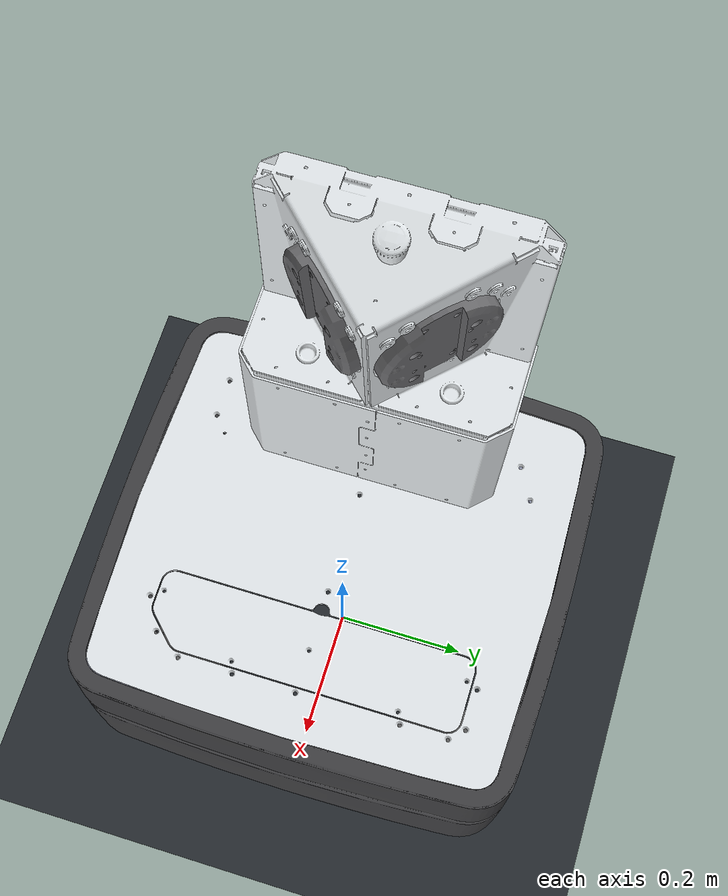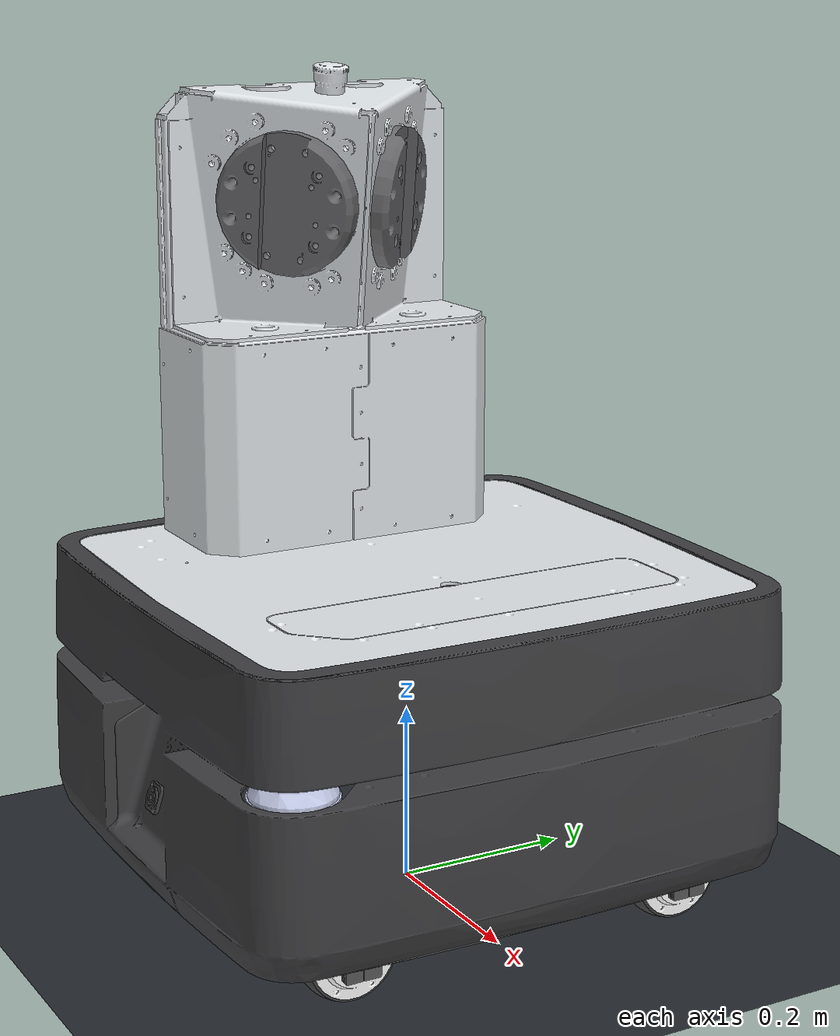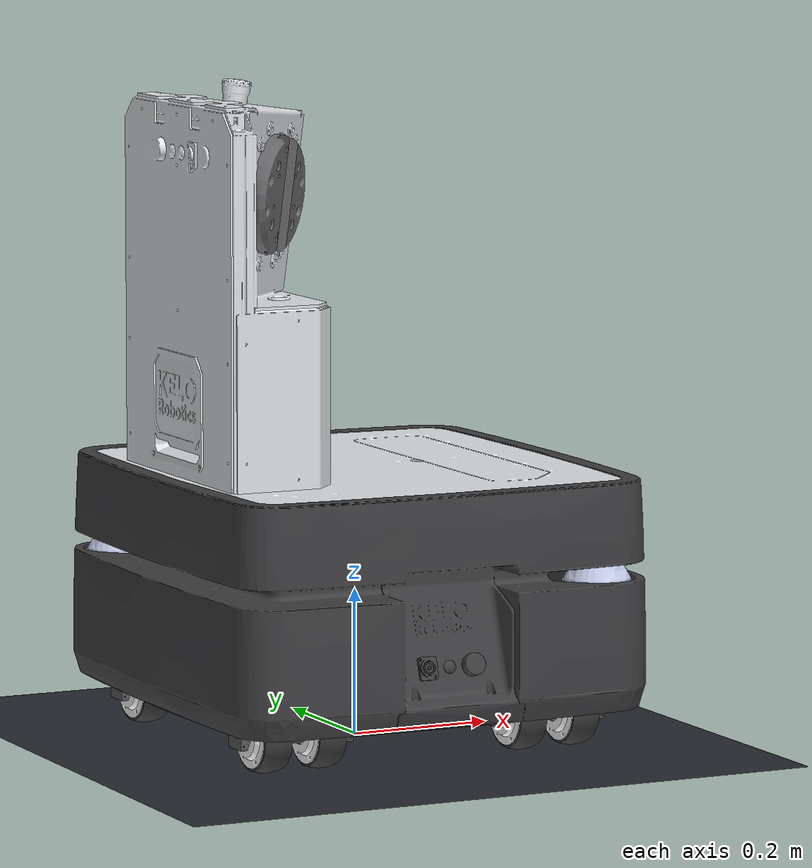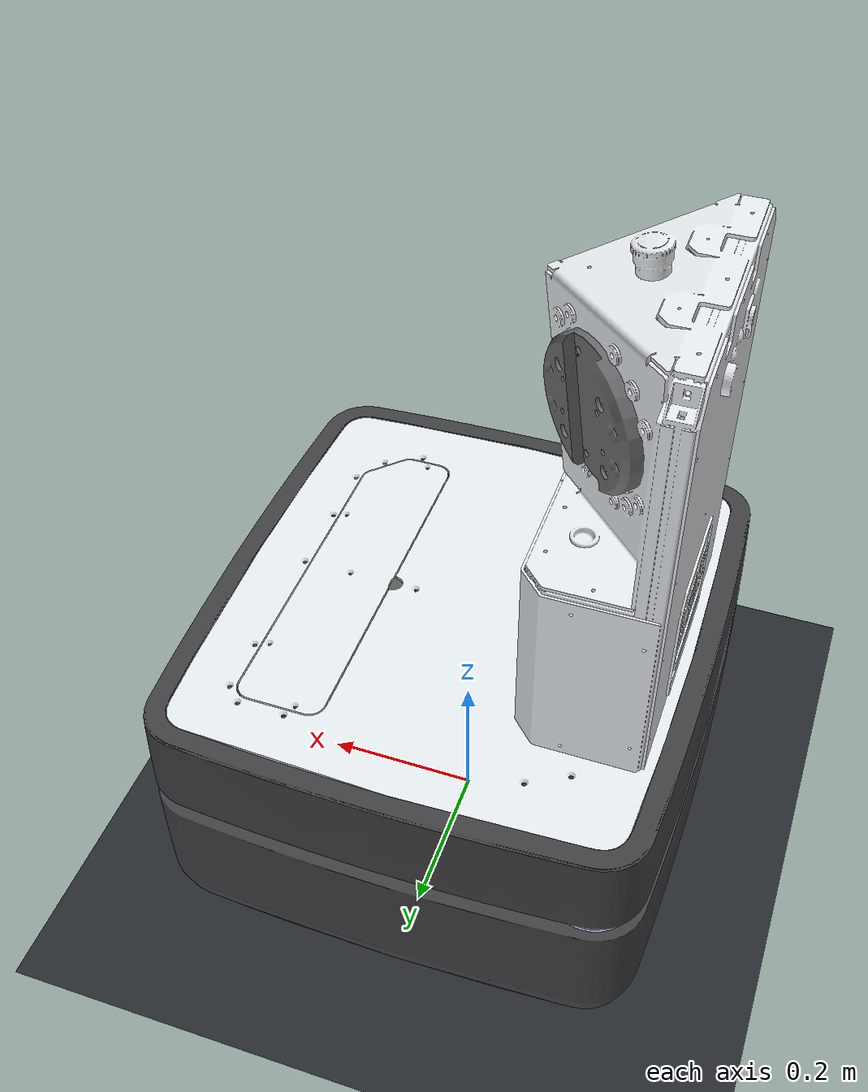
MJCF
<mujoco model="eddie_mobile_platform">
  <compiler angle="radian" inertiafromgeom="false" meshdir="../meshes"/>
  <option timestep="0.001" gravity="0 0 -9.81" integrator="implicitfast"/>
  <visual>
    <global offwidth="1280" offheight="720"/>
    <headlight diffuse="0.4 0.4 0.4" ambient="0.3 0.3 0.3" specular="0.2 0.2 0.2"/>
    <map znear="0.01" zfar="20"/>
    <rgba haze="0.15 0.2 0.25 1"/>
  </visual>
  <default>
    <joint damping="0.1" armature="0.002"/>
    <geom contype="0" conaffinity="0"/>
  </default>
  <asset>
    <texture name="sky" type="skybox" builtin="gradient" rgb1="0.15 0.25 0.4" rgb2="0.75 0.85 0.95" width="512" height="512"/>
    <texture name="floor_grid" type="2d" builtin="checker" rgb1="0.12 0.14 0.16" rgb2="0.18 0.2 0.22" width="512" height="512" mark="cross" markrgb="0.35 0.38 0.4"/>
    <material name="floor" texture="floor_grid" texrepeat="4 4" texuniform="true" reflectance="0.15"/>
    <material name="m_casing" rgba="0.25 0.25 0.26 1" specular="0.15" shininess="0.12"/>
    <material name="m_cover" rgba="0.898 0.918 0.929 1" specular="0.35" shininess="0.3"/>
    <material name="m_lidar" rgba="0.792 0.82 0.933 1" specular="0.3" shininess="0.25"/>
    <material name="m_mount" rgba="0.42 0.42 0.43 1" specular="0.3" shininess="0.3"/>
    <material name="m_drive" rgba="0.35 0.35 0.35 1" specular="0.3" shininess="0.25"/>
    <material name="m_wheel" rgba="0.996 0.996 1 1" specular="0.35" shininess="0.3"/>
    <material name="m_tyre" rgba="0.251 0.251 0.251 1" specular="0.12" shininess="0.1"/>
    <mesh name="casing" file="casing.stl" scale="0.001 0.001 0.001"/>
    <mesh name="panel" file="panel.stl" scale="0.001 0.001 0.001"/>
    <mesh name="cover" file="cover.stl" scale="0.001 0.001 0.001"/>
    <mesh name="lidar" file="lidar.stl" scale="0.001 0.001 0.001"/>
    <mesh name="torso" file="torso.stl" scale="0.001 0.001 0.001"/>
    <mesh name="torso_mounts" file="torso_mounts.stl" scale="0.001 0.001 0.001"/>
    <mesh name="drive" file="drive.stl" scale="0.001 0.001 0.001"/>
    <mesh name="wheel_a" file="wheel_a.stl" scale="0.001 0.001 0.001"/>
    <mesh name="wheel_b" file="wheel_b.stl" scale="0.001 0.001 0.001"/>
    <mesh name="tyre_a" file="tyre_a.stl" scale="0.001 0.001 0.001"/>
    <mesh name="tyre_b" file="tyre_b.stl" scale="0.001 0.001 0.001"/>
  </asset>
  <worldbody>
    <light name="key" pos="1.5 -1.5 3" dir="-0.4 0.4 -1" directional="true" diffuse="1 0.95 0.85" castshadow="true"/>
    <light name="fill" pos="-2 1 1.5" dir="0.7 -0.3 -0.5" directional="true" diffuse="0.35 0.45 0.7"/>
    <geom name="floor" type="plane" size="5 5 0.1" material="floor" friction="1 0.005 0.0001" contype="1" conaffinity="1"/>
    <body name="base" pos="0 0 0.218">
      <freejoint/>
      <!-- Base and torso, plus the two 0.16 kg laser scanners the URDF carries as
           their own links, with their parallel-axis terms. -->
      <inertial pos="0 0 0.0833" mass="76.7577" diaginertia="4.147165 4.133063 3.398081"/>
      <geom type="mesh" mesh="casing" material="m_casing" quat="0.5 0.5 0.5 0.5"/>
      <geom type="mesh" mesh="panel" material="m_casing" quat="0.5 0.5 0.5 0.5"/>
      <geom type="mesh" mesh="cover" material="m_cover" quat="0.5 0.5 0.5 0.5"/>
      <geom type="mesh" mesh="lidar" material="m_lidar" quat="0.5 0.5 0.5 0.5"/>
      <!-- Tower up to the arm mounts; placed from "Full assembly Robot 7_5D.STEP". -->
      <geom type="mesh" mesh="torso" material="m_cover" pos="-0.1738 0.0003 0.4184" quat="0.5 0.5 0.5 0.5"/>
      <geom type="mesh" mesh="torso_mounts" material="m_mount" pos="-0.1738 0.0003 0.4184" quat="0.5 0.5 0.5 0.5"/>
      <!-- the frame the drive positions and the odometry twist refer to -->
      <body name="base_link" pos="0 0 0"/>
      <body name="front_left_caster" pos="0.18813 0.20748 -0.1273">
        <joint name="pivot_front_left" type="hinge" axis="0 0 1"/>
        <inertial pos="0 -0.0101 0" mass="1.392" diaginertia="0.004574163 0.004344228 0.004640438"/>
        <geom type="mesh" mesh="drive" material="m_drive" quat="0.5 0.5 -0.5 -0.5"/>
        <body pos="0.040500 -0.010000 -0.036623">
          <joint name="wheel_front_left_right" type="hinge" axis="-1 0 0"/>
          <inertial pos="0 0 0" mass="1.563" diaginertia="0.001579986 0.001012837 0.001013130"/>
          <geom type="mesh" mesh="tyre_a" material="m_tyre" quat="0.5 0.5 -0.5 -0.5" contype="1" conaffinity="1" friction="1 0.005 0.0001"/>
          <geom type="mesh" mesh="wheel_a" material="m_wheel" quat="0.5 0.5 -0.5 -0.5"/>
        </body>
        <body pos="-0.040500 -0.010000 -0.036623">
          <joint name="wheel_front_left_left" type="hinge" axis="-1 0 0"/>
          <inertial pos="0 0 0" mass="1.563" diaginertia="0.001579986 0.001012837 0.001013130"/>
          <geom type="mesh" mesh="tyre_b" material="m_tyre" quat="0.5 0.5 -0.5 -0.5" contype="1" conaffinity="1" friction="1 0.005 0.0001"/>
          <geom type="mesh" mesh="wheel_b" material="m_wheel" quat="0.5 0.5 -0.5 -0.5"/>
        </body>
      </body>
      <body name="front_right_caster" pos="0.18813 -0.20752 -0.1273">
        <joint name="pivot_front_right" type="hinge" axis="0 0 1"/>
        <inertial pos="0 0.0101 0" mass="1.392" diaginertia="0.004574163 0.004344228 0.004640438"/>
        <geom type="mesh" mesh="drive" material="m_drive" quat="0.5 0.5 0.5 0.5"/>
        <body pos="-0.040500 0.010000 -0.036623">
          <joint name="wheel_front_right_right" type="hinge" axis="-1 0 0"/>
          <inertial pos="0 0 0" mass="1.563" diaginertia="0.001579986 0.001012837 0.001013130"/>
          <geom type="mesh" mesh="tyre_a" material="m_tyre" quat="0.5 0.5 0.5 0.5" contype="1" conaffinity="1" friction="1 0.005 0.0001"/>
          <geom type="mesh" mesh="wheel_a" material="m_wheel" quat="0.5 0.5 0.5 0.5"/>
        </body>
        <body pos="0.040500 0.010000 -0.036623">
          <joint name="wheel_front_right_left" type="hinge" axis="-1 0 0"/>
          <inertial pos="0 0 0" mass="1.563" diaginertia="0.001579986 0.001012837 0.001013130"/>
          <geom type="mesh" mesh="tyre_b" material="m_tyre" quat="0.5 0.5 0.5 0.5" contype="1" conaffinity="1" friction="1 0.005 0.0001"/>
          <geom type="mesh" mesh="wheel_b" material="m_wheel" quat="0.5 0.5 0.5 0.5"/>
        </body>
      </body>
      <body name="rear_right_caster" pos="-0.18787 -0.20752 -0.1273">
        <joint name="pivot_rear_right" type="hinge" axis="0 0 1"/>
        <inertial pos="0 0.0101 0" mass="1.392" diaginertia="0.004574163 0.004344228 0.004640438"/>
        <geom type="mesh" mesh="drive" material="m_drive" quat="0.5 0.5 0.5 0.5"/>
        <body pos="-0.040500 0.010000 -0.036623">
          <joint name="wheel_rear_right_right" type="hinge" axis="-1 0 0"/>
          <inertial pos="0 0 0" mass="1.563" diaginertia="0.001579986 0.001012837 0.001013130"/>
          <geom type="mesh" mesh="tyre_a" material="m_tyre" quat="0.5 0.5 0.5 0.5" contype="1" conaffinity="1" friction="1 0.005 0.0001"/>
          <geom type="mesh" mesh="wheel_a" material="m_wheel" quat="0.5 0.5 0.5 0.5"/>
        </body>
        <body pos="0.040500 0.010000 -0.036623">
          <joint name="wheel_rear_right_left" type="hinge" axis="-1 0 0"/>
          <inertial pos="0 0 0" mass="1.563" diaginertia="0.001579986 0.001012837 0.001013130"/>
          <geom type="mesh" mesh="tyre_b" material="m_tyre" quat="0.5 0.5 0.5 0.5" contype="1" conaffinity="1" friction="1 0.005 0.0001"/>
          <geom type="mesh" mesh="wheel_b" material="m_wheel" quat="0.5 0.5 0.5 0.5"/>
        </body>
      </body>
      <body name="rear_left_caster" pos="-0.18787 0.20748 -0.1273">
        <joint name="pivot_rear_left" type="hinge" axis="0 0 1"/>
        <inertial pos="0 -0.0101 0" mass="1.392" diaginertia="0.004574163 0.004344228 0.004640438"/>
        <geom type="mesh" mesh="drive" material="m_drive" quat="0.5 0.5 -0.5 -0.5"/>
        <body pos="0.040500 -0.010000 -0.036623">
          <joint name="wheel_rear_left_right" type="hinge" axis="-1 0 0"/>
          <inertial pos="0 0 0" mass="1.563" diaginertia="0.001579986 0.001012837 0.001013130"/>
          <geom type="mesh" mesh="tyre_a" material="m_tyre" quat="0.5 0.5 -0.5 -0.5" contype="1" conaffinity="1" friction="1 0.005 0.0001"/>
          <geom type="mesh" mesh="wheel_a" material="m_wheel" quat="0.5 0.5 -0.5 -0.5"/>
        </body>
        <body pos="-0.040500 -0.010000 -0.036623">
          <joint name="wheel_rear_left_left" type="hinge" axis="-1 0 0"/>
          <inertial pos="0 0 0" mass="1.563" diaginertia="0.001579986 0.001012837 0.001013130"/>
          <geom type="mesh" mesh="tyre_b" material="m_tyre" quat="0.5 0.5 -0.5 -0.5" contype="1" conaffinity="1" friction="1 0.005 0.0001"/>
          <geom type="mesh" mesh="wheel_b" material="m_wheel" quat="0.5 0.5 -0.5 -0.5"/>
        </body>
      </body>
    </body>
  </worldbody>
  <actuator>
    <motor name="pivot_front_left" joint="pivot_front_left" gear="4" ctrlrange="-10 10"/>
    <motor name="pivot_rear_left" joint="pivot_rear_left" gear="4" ctrlrange="-10 10"/>
    <motor name="pivot_rear_right" joint="pivot_rear_right" gear="4" ctrlrange="-10 10"/>
    <motor name="pivot_front_right" joint="pivot_front_right" gear="4" ctrlrange="-10 10"/>
    <motor name="wheel_front_left_right" joint="wheel_front_left_right" gear="1" ctrlrange="-12 12"/>
    <motor name="wheel_front_left_left" joint="wheel_front_left_left" gear="1" ctrlrange="-12 12"/>
    <motor name="wheel_rear_left_right" joint="wheel_rear_left_right" gear="1" ctrlrange="-12 12"/>
    <motor name="wheel_rear_left_left" joint="wheel_rear_left_left" gear="1" ctrlrange="-12 12"/>
    <motor name="wheel_rear_right_right" joint="wheel_rear_right_right" gear="1" ctrlrange="-12 12"/>
    <motor name="wheel_rear_right_left" joint="wheel_rear_right_left" gear="1" ctrlrange="-12 12"/>
    <motor name="wheel_front_right_right" joint="wheel_front_right_right" gear="1" ctrlrange="-12 12"/>
    <motor name="wheel_front_right_left" joint="wheel_front_right_left" gear="1" ctrlrange="-12 12"/>
  </actuator>
</mujoco>
